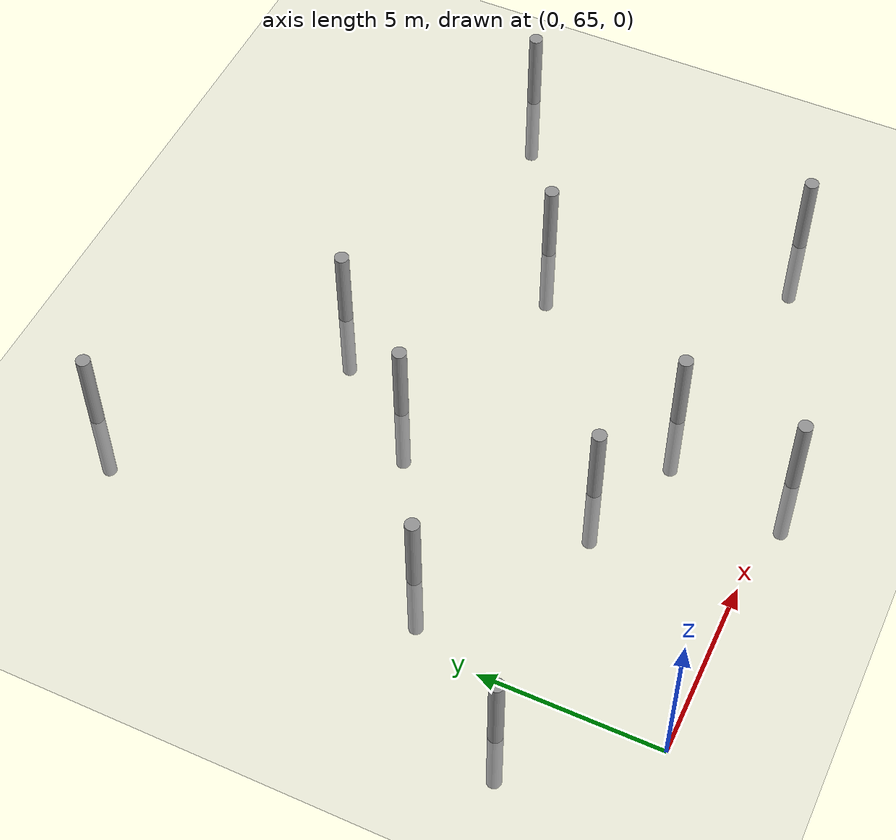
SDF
<sdf version="1.6">
 <world name="default">
  <model name="ground_plane">
   <static>1</static>
   <link name="link">
    <collision name="collision">
     <geometry><plane><normal>0 0 1</normal><size>100 100</size></plane></geometry>
     <surface><friction><ode><mu>100</mu><mu2>50</mu2></ode></friction></surface>
    </collision>
    <visual name="visual">
     <cast_shadows>0</cast_shadows>
     <geometry><plane><normal>0 0 1</normal><size>100 100</size></plane></geometry>
     <material>
      <script><uri>file://media/materials/scripts/gazebo.material</uri><name>Gazebo/Grey</name></script>
     </material>
    </visual>
   </link>
  </model>
  <model name="empty_pillars_0">
   <model name="empty_pillar_clone_6">
    <link name="link">
     <inertial>
      <mass>1</mass>
      <inertia><ixx>0.145833</ixx><ixy>0</ixy><ixz>0</ixz><iyy>0.145833</iyy><iyz>0</iyz><izz>0.125</izz></inertia>
     </inertial>
     <visual name="visual">
      <geometry><cylinder><radius>0.2</radius><length>5</length></cylinder></geometry>
      <material>
       <script><name>Gazebo/Grey</name><uri>file://media/materials/scripts/gazebo.material</uri></script>
       <shader type="vertex"><normal_map>__default__</normal_map></shader>
       <ambient>0.3 0.3 0.3 1</ambient>
       <diffuse>0.7 0.7 0.7 1</diffuse>
       <specular>0.01 0.01 0.01 1</specular>
       <emissive>0 0 0 1</emissive>
      </material>
     </visual>
     <collision name="collision">
      <geometry><cylinder><radius>0.05</radius><length>5</length></cylinder></geometry>
      <surface>
       <friction>
        <ode><mu>1</mu><mu2>1</mu2><fdir1>0 0 0</fdir1><slip1>0</slip1><slip2>0</slip2></ode>
        <torsional>
         <coefficient>1</coefficient>
         <patch_radius>0</patch_radius>
         <surface_radius>0</surface_radius>
         <use_patch_radius>1</use_patch_radius>
         <ode><slip>0</slip></ode>
        </torsional>
       </friction>
       <bounce><restitution_coefficient>0</restitution_coefficient><threshold>1e+06</threshold></bounce>
       <contact>
        <collide_without_contact>0</collide_without_contact>
        <collide_without_contact_bitmask>1</collide_without_contact_bitmask>
        <collide_bitmask>1</collide_bitmask>
        <ode>
         <soft_cfm>0</soft_cfm>
         <soft_erp>0.2</soft_erp>
         <kp>1e+13</kp>
         <kd>1</kd>
         <max_vel>0.01</max_vel>
         <min_depth>0</min_depth>
        </ode>
        <bullet>
         <split_impulse>1</split_impulse>
         <split_impulse_penetration_threshold>-0.01</split_impulse_penetration_threshold>
         <soft_cfm>0</soft_cfm>
         <soft_erp>0.2</soft_erp>
         <kp>1e+13</kp>
         <kd>1</kd>
        </bullet>
       </contact>
      </surface>
     </collision>
    </link>
    <static>0</static>
    <pose>24.9156 -9.11394 0 0 -0 0</pose>
   </model>
   <static>0</static>
   <pose>-26.2243 78.0173 0 0 -0 0</pose>
  </model>
  <model name="empty_pillars_1">
   <model name="empty_pillar">
    <link name="link">
     <inertial>
      <mass>1</mass>
      <inertia><ixx>0.145833</ixx><ixy>0</ixy><ixz>0</ixz><iyy>0.145833</iyy><iyz>0</iyz><izz>0.125</izz></inertia>
     </inertial>
     <visual name="visual">
      <geometry><cylinder><radius>0.2</radius><length>5</length></cylinder></geometry>
      <material>
       <script><name>Gazebo/Grey</name><uri>file://media/materials/scripts/gazebo.material</uri></script>
       <shader type="vertex"><normal_map>__default__</normal_map></shader>
       <ambient>0.3 0.3 0.3 1</ambient>
       <diffuse>0.7 0.7 0.7 1</diffuse>
       <specular>0.01 0.01 0.01 1</specular>
       <emissive>0 0 0 1</emissive>
      </material>
     </visual>
     <collision name="collision">
      <geometry><cylinder><radius>0.05</radius><length>5</length></cylinder></geometry>
      <surface>
       <friction>
        <ode><mu>1</mu><mu2>1</mu2><fdir1>0 0 0</fdir1><slip1>0</slip1><slip2>0</slip2></ode>
        <torsional>
         <coefficient>1</coefficient>
         <patch_radius>0</patch_radius>
         <surface_radius>0</surface_radius>
         <use_patch_radius>1</use_patch_radius>
         <ode><slip>0</slip></ode>
        </torsional>
       </friction>
       <bounce><restitution_coefficient>0</restitution_coefficient><threshold>1e+06</threshold></bounce>
       <contact>
        <collide_without_contact>0</collide_without_contact>
        <collide_without_contact_bitmask>1</collide_without_contact_bitmask>
        <collide_bitmask>1</collide_bitmask>
        <ode>
         <soft_cfm>0</soft_cfm>
         <soft_erp>0.2</soft_erp>
         <kp>1e+13</kp>
         <kd>1</kd>
         <max_vel>0.01</max_vel>
         <min_depth>0</min_depth>
        </ode>
        <bullet>
         <split_impulse>1</split_impulse>
         <split_impulse_penetration_threshold>-0.01</split_impulse_penetration_threshold>
         <soft_cfm>0</soft_cfm>
         <soft_erp>0.2</soft_erp>
         <kp>1e+13</kp>
         <kd>1</kd>
        </bullet>
       </contact>
      </surface>
     </collision>
    </link>
    <static>0</static>
    <pose>-3.84527 -0.717439 0 0 -0 0</pose>
   </model>
   <model name="empty_pillar_clone_14">
    <link name="link">
     <inertial>
      <mass>1</mass>
      <inertia><ixx>0.145833</ixx><ixy>0</ixy><ixz>0</ixz><iyy>0.145833</iyy><iyz>0</iyz><izz>0.125</izz></inertia>
     </inertial>
     <visual name="visual">
      <geometry><cylinder><radius>0.2</radius><length>5</length></cylinder></geometry>
      <material>
       <script><name>Gazebo/Grey</name><uri>file://media/materials/scripts/gazebo.material</uri></script>
       <shader type="vertex"><normal_map>__default__</normal_map></shader>
       <ambient>0.3 0.3 0.3 1</ambient>
       <diffuse>0.7 0.7 0.7 1</diffuse>
       <specular>0.01 0.01 0.01 1</specular>
       <emissive>0 0 0 1</emissive>
      </material>
     </visual>
     <collision name="collision">
      <geometry><cylinder><radius>0.05</radius><length>5</length></cylinder></geometry>
      <surface>
       <friction>
        <ode><mu>1</mu><mu2>1</mu2><fdir1>0 0 0</fdir1><slip1>0</slip1><slip2>0</slip2></ode>
        <torsional>
         <coefficient>1</coefficient>
         <patch_radius>0</patch_radius>
         <surface_radius>0</surface_radius>
         <use_patch_radius>1</use_patch_radius>
         <ode><slip>0</slip></ode>
        </torsional>
       </friction>
       <bounce><restitution_coefficient>0</restitution_coefficient><threshold>1e+06</threshold></bounce>
       <contact>
        <collide_without_contact>0</collide_without_contact>
        <collide_without_contact_bitmask>1</collide_without_contact_bitmask>
        <collide_bitmask>1</collide_bitmask>
        <ode>
         <soft_cfm>0</soft_cfm>
         <soft_erp>0.2</soft_erp>
         <kp>1e+13</kp>
         <kd>1</kd>
         <max_vel>0.01</max_vel>
         <min_depth>0</min_depth>
        </ode>
        <bullet>
         <split_impulse>1</split_impulse>
         <split_impulse_penetration_threshold>-0.01</split_impulse_penetration_threshold>
         <soft_cfm>0</soft_cfm>
         <soft_erp>0.2</soft_erp>
         <kp>1e+13</kp>
         <kd>1</kd>
        </bullet>
       </contact>
      </surface>
     </collision>
    </link>
    <static>0</static>
    <pose>-14.0146 0.646152 0 0 -0 0</pose>
   </model>
   <model name="empty_pillar_clone_15">
    <link name="link">
     <inertial>
      <mass>1</mass>
      <inertia><ixx>0.145833</ixx><ixy>0</ixy><ixz>0</ixz><iyy>0.145833</iyy><iyz>0</iyz><izz>0.125</izz></inertia>
     </inertial>
     <visual name="visual">
      <geometry><cylinder><radius>0.2</radius><length>5</length></cylinder></geometry>
      <material>
       <script><name>Gazebo/Grey</name><uri>file://media/materials/scripts/gazebo.material</uri></script>
       <shader type="vertex"><normal_map>__default__</normal_map></shader>
       <ambient>0.3 0.3 0.3 1</ambient>
       <diffuse>0.7 0.7 0.7 1</diffuse>
       <specular>0.01 0.01 0.01 1</specular>
       <emissive>0 0 0 1</emissive>
      </material>
     </visual>
     <collision name="collision">
      <geometry><cylinder><radius>0.05</radius><length>5</length></cylinder></geometry>
      <surface>
       <friction>
        <ode><mu>1</mu><mu2>1</mu2><fdir1>0 0 0</fdir1><slip1>0</slip1><slip2>0</slip2></ode>
        <torsional>
         <coefficient>1</coefficient>
         <patch_radius>0</patch_radius>
         <surface_radius>0</surface_radius>
         <use_patch_radius>1</use_patch_radius>
         <ode><slip>0</slip></ode>
        </torsional>
       </friction>
       <bounce><restitution_coefficient>0</restitution_coefficient><threshold>1e+06</threshold></bounce>
       <contact>
        <collide_without_contact>0</collide_without_contact>
        <collide_without_contact_bitmask>1</collide_without_contact_bitmask>
        <collide_bitmask>1</collide_bitmask>
        <ode>
         <soft_cfm>0</soft_cfm>
         <soft_erp>0.2</soft_erp>
         <kp>1e+13</kp>
         <kd>1</kd>
         <max_vel>0.01</max_vel>
         <min_depth>0</min_depth>
        </ode>
        <bullet>
         <split_impulse>1</split_impulse>
         <split_impulse_penetration_threshold>-0.01</split_impulse_penetration_threshold>
         <soft_cfm>0</soft_cfm>
         <soft_erp>0.2</soft_erp>
         <kp>1e+13</kp>
         <kd>1</kd>
        </bullet>
       </contact>
      </surface>
     </collision>
    </link>
    <static>0</static>
    <pose>-9.37193 -3.58732 0 0 -0 0</pose>
   </model>
   <model name="empty_pillar_clone_18">
    <link name="link">
     <inertial>
      <mass>1</mass>
      <inertia><ixx>0.145833</ixx><ixy>0</ixy><ixz>0</ixz><iyy>0.145833</iyy><iyz>0</iyz><izz>0.125</izz></inertia>
     </inertial>
     <visual name="visual">
      <geometry><cylinder><radius>0.2</radius><length>5</length></cylinder></geometry>
      <material>
       <script><name>Gazebo/Grey</name><uri>file://media/materials/scripts/gazebo.material</uri></script>
       <shader type="vertex"><normal_map>__default__</normal_map></shader>
       <ambient>0.3 0.3 0.3 1</ambient>
       <diffuse>0.7 0.7 0.7 1</diffuse>
       <specular>0.01 0.01 0.01 1</specular>
       <emissive>0 0 0 1</emissive>
      </material>
     </visual>
     <collision name="collision">
      <geometry><cylinder><radius>0.05</radius><length>5</length></cylinder></geometry>
      <surface>
       <friction>
        <ode><mu>1</mu><mu2>1</mu2><fdir1>0 0 0</fdir1><slip1>0</slip1><slip2>0</slip2></ode>
        <torsional>
         <coefficient>1</coefficient>
         <patch_radius>0</patch_radius>
         <surface_radius>0</surface_radius>
         <use_patch_radius>1</use_patch_radius>
         <ode><slip>0</slip></ode>
        </torsional>
       </friction>
       <bounce><restitution_coefficient>0</restitution_coefficient><threshold>1e+06</threshold></bounce>
       <contact>
        <collide_without_contact>0</collide_without_contact>
        <collide_without_contact_bitmask>1</collide_without_contact_bitmask>
        <collide_bitmask>1</collide_bitmask>
        <ode>
         <soft_cfm>0</soft_cfm>
         <soft_erp>0.2</soft_erp>
         <kp>1e+13</kp>
         <kd>1</kd>
         <max_vel>0.01</max_vel>
         <min_depth>0</min_depth>
        </ode>
        <bullet>
         <split_impulse>1</split_impulse>
         <split_impulse_penetration_threshold>-0.01</split_impulse_penetration_threshold>
         <soft_cfm>0</soft_cfm>
         <soft_erp>0.2</soft_erp>
         <kp>1e+13</kp>
         <kd>1</kd>
        </bullet>
       </contact>
      </surface>
     </collision>
    </link>
    <static>0</static>
    <pose>-20.0146 5.15966 0 0 -0 0</pose>
   </model>
   <model name="empty_pillar_clone_36">
    <link name="link">
     <inertial>
      <mass>1</mass>
      <inertia><ixx>0.145833</ixx><ixy>0</ixy><ixz>0</ixz><iyy>0.145833</iyy><iyz>0</iyz><izz>0.125</izz></inertia>
     </inertial>
     <visual name="visual">
      <geometry><cylinder><radius>0.2</radius><length>5</length></cylinder></geometry>
      <material>
       <script><name>Gazebo/Grey</name><uri>file://media/materials/scripts/gazebo.material</uri></script>
       <shader type="vertex"><normal_map>__default__</normal_map></shader>
       <ambient>0.3 0.3 0.3 1</ambient>
       <diffuse>0.7 0.7 0.7 1</diffuse>
       <specular>0.01 0.01 0.01 1</specular>
       <emissive>0 0 0 1</emissive>
      </material>
     </visual>
     <collision name="collision">
      <geometry><cylinder><radius>0.05</radius><length>5</length></cylinder></geometry>
      <surface>
       <friction>
        <ode><mu>1</mu><mu2>1</mu2><fdir1>0 0 0</fdir1><slip1>0</slip1><slip2>0</slip2></ode>
        <torsional>
         <coefficient>1</coefficient>
         <patch_radius>0</patch_radius>
         <surface_radius>0</surface_radius>
         <use_patch_radius>1</use_patch_radius>
         <ode><slip>0</slip></ode>
        </torsional>
       </friction>
       <bounce><restitution_coefficient>0</restitution_coefficient><threshold>1e+06</threshold></bounce>
       <contact>
        <collide_without_contact>0</collide_without_contact>
        <collide_without_contact_bitmask>1</collide_without_contact_bitmask>
        <collide_bitmask>1</collide_bitmask>
        <ode>
         <soft_cfm>0</soft_cfm>
         <soft_erp>0.2</soft_erp>
         <kp>1e+13</kp>
         <kd>1</kd>
         <max_vel>0.01</max_vel>
         <min_depth>0</min_depth>
        </ode>
        <bullet>
         <split_impulse>1</split_impulse>
         <split_impulse_penetration_threshold>-0.01</split_impulse_penetration_threshold>
         <soft_cfm>0</soft_cfm>
         <soft_erp>0.2</soft_erp>
         <kp>1e+13</kp>
         <kd>1</kd>
        </bullet>
       </contact>
      </surface>
     </collision>
    </link>
    <static>0</static>
    <pose>-21.0146 -4.84034 0 0 -0 0</pose>
   </model>
   <model name="empty_pillar_clone_37">
    <link name="link">
     <inertial>
      <mass>1</mass>
      <inertia><ixx>0.145833</ixx><ixy>0</ixy><ixz>0</ixz><iyy>0.145833</iyy><iyz>0</iyz><izz>0.125</izz></inertia>
     </inertial>
     <visual name="visual">
      <geometry><cylinder><radius>0.2</radius><length>5</length></cylinder></geometry>
      <material>
       <script><name>Gazebo/Grey</name><uri>file://media/materials/scripts/gazebo.material</uri></script>
       <shader type="vertex"><normal_map>__default__</normal_map></shader>
       <ambient>0.3 0.3 0.3 1</ambient>
       <diffuse>0.7 0.7 0.7 1</diffuse>
       <specular>0.01 0.01 0.01 1</specular>
       <emissive>0 0 0 1</emissive>
      </material>
     </visual>
     <collision name="collision">
      <geometry><cylinder><radius>0.05</radius><length>5</length></cylinder></geometry>
      <surface>
       <friction>
        <ode><mu>1</mu><mu2>1</mu2><fdir1>0 0 0</fdir1><slip1>0</slip1><slip2>0</slip2></ode>
        <torsional>
         <coefficient>1</coefficient>
         <patch_radius>0</patch_radius>
         <surface_radius>0</surface_radius>
         <use_patch_radius>1</use_patch_radius>
         <ode><slip>0</slip></ode>
        </torsional>
       </friction>
       <bounce><restitution_coefficient>0</restitution_coefficient><threshold>1e+06</threshold></bounce>
       <contact>
        <collide_without_contact>0</collide_without_contact>
        <collide_without_contact_bitmask>1</collide_without_contact_bitmask>
        <collide_bitmask>1</collide_bitmask>
        <ode>
         <soft_cfm>0</soft_cfm>
         <soft_erp>0.2</soft_erp>
         <kp>1e+13</kp>
         <kd>1</kd>
         <max_vel>0.01</max_vel>
         <min_depth>0</min_depth>
        </ode>
        <bullet>
         <split_impulse>1</split_impulse>
         <split_impulse_penetration_threshold>-0.01</split_impulse_penetration_threshold>
         <soft_cfm>0</soft_cfm>
         <soft_erp>0.2</soft_erp>
         <kp>1e+13</kp>
         <kd>1</kd>
        </bullet>
       </contact>
      </surface>
     </collision>
    </link>
    <static>0</static>
    <pose>-16.6035 -7.98282 0 0 -0 0</pose>
   </model>
   <model name="empty_pillar_clone_38">
    <link name="link">
     <inertial>
      <mass>1</mass>
      <inertia><ixx>0.145833</ixx><ixy>0</ixy><ixz>0</ixz><iyy>0.145833</iyy><iyz>0</iyz><izz>0.125</izz></inertia>
     </inertial>
     <visual name="visual">
      <geometry><cylinder><radius>0.2</radius><length>5</length></cylinder></geometry>
      <material>
       <script><name>Gazebo/Grey</name><uri>file://media/materials/scripts/gazebo.material</uri></script>
       <shader type="vertex"><normal_map>__default__</normal_map></shader>
       <ambient>0.3 0.3 0.3 1</ambient>
       <diffuse>0.7 0.7 0.7 1</diffuse>
       <specular>0.01 0.01 0.01 1</specular>
       <emissive>0 0 0 1</emissive>
      </material>
     </visual>
     <collision name="collision">
      <geometry><cylinder><radius>0.05</radius><length>5</length></cylinder></geometry>
      <surface>
       <friction>
        <ode><mu>1</mu><mu2>1</mu2><fdir1>0 0 0</fdir1><slip1>0</slip1><slip2>0</slip2></ode>
        <torsional>
         <coefficient>1</coefficient>
         <patch_radius>0</patch_radius>
         <surface_radius>0</surface_radius>
         <use_patch_radius>1</use_patch_radius>
         <ode><slip>0</slip></ode>
        </torsional>
       </friction>
       <bounce><restitution_coefficient>0</restitution_coefficient><threshold>1e+06</threshold></bounce>
       <contact>
        <collide_without_contact>0</collide_without_contact>
        <collide_without_contact_bitmask>1</collide_without_contact_bitmask>
        <collide_bitmask>1</collide_bitmask>
        <ode>
         <soft_cfm>0</soft_cfm>
         <soft_erp>0.2</soft_erp>
         <kp>1e+13</kp>
         <kd>1</kd>
         <max_vel>0.01</max_vel>
         <min_depth>0</min_depth>
        </ode>
        <bullet>
         <split_impulse>1</split_impulse>
         <split_impulse_penetration_threshold>-0.01</split_impulse_penetration_threshold>
         <soft_cfm>0</soft_cfm>
         <soft_erp>0.2</soft_erp>
         <kp>1e+13</kp>
         <kd>1</kd>
        </bullet>
       </contact>
      </surface>
     </collision>
    </link>
    <static>0</static>
    <pose>-16.33 -2.21607 0 0 -0 0</pose>
   </model>
   <model name="empty_pillar_clone_39">
    <link name="link">
     <inertial>
      <mass>1</mass>
      <inertia><ixx>0.145833</ixx><ixy>0</ixy><ixz>0</ixz><iyy>0.145833</iyy><iyz>0</iyz><izz>0.125</izz></inertia>
     </inertial>
     <visual name="visual">
      <geometry><cylinder><radius>0.2</radius><length>5</length></cylinder></geometry>
      <material>
       <script><name>Gazebo/Grey</name><uri>file://media/materials/scripts/gazebo.material</uri></script>
       <shader type="vertex"><normal_map>__default__</normal_map></shader>
       <ambient>0.3 0.3 0.3 1</ambient>
       <diffuse>0.7 0.7 0.7 1</diffuse>
       <specular>0.01 0.01 0.01 1</specular>
       <emissive>0 0 0 1</emissive>
      </material>
     </visual>
     <collision name="collision">
      <geometry><cylinder><radius>0.05</radius><length>5</length></cylinder></geometry>
      <surface>
       <friction>
        <ode><mu>1</mu><mu2>1</mu2><fdir1>0 0 0</fdir1><slip1>0</slip1><slip2>0</slip2></ode>
        <torsional>
         <coefficient>1</coefficient>
         <patch_radius>0</patch_radius>
         <surface_radius>0</surface_radius>
         <use_patch_radius>1</use_patch_radius>
         <ode><slip>0</slip></ode>
        </torsional>
       </friction>
       <bounce><restitution_coefficient>0</restitution_coefficient><threshold>1e+06</threshold></bounce>
       <contact>
        <collide_without_contact>0</collide_without_contact>
        <collide_without_contact_bitmask>1</collide_without_contact_bitmask>
        <collide_bitmask>1</collide_bitmask>
        <ode>
         <soft_cfm>0</soft_cfm>
         <soft_erp>0.2</soft_erp>
         <kp>1e+13</kp>
         <kd>1</kd>
         <max_vel>0.01</max_vel>
         <min_depth>0</min_depth>
        </ode>
        <bullet>
         <split_impulse>1</split_impulse>
         <split_impulse_penetration_threshold>-0.01</split_impulse_penetration_threshold>
         <soft_cfm>0</soft_cfm>
         <soft_erp>0.2</soft_erp>
         <kp>1e+13</kp>
         <kd>1</kd>
        </bullet>
       </contact>
      </surface>
     </collision>
    </link>
    <static>0</static>
    <pose>-13.4361 -9.12638 0 0 -0 0</pose>
   </model>
   <model name="empty_pillar_clone_41">
    <link name="link">
     <inertial>
      <mass>1</mass>
      <inertia><ixx>0.145833</ixx><ixy>0</ixy><ixz>0</ixz><iyy>0.145833</iyy><iyz>0</iyz><izz>0.125</izz></inertia>
     </inertial>
     <visual name="visual">
      <geometry><cylinder><radius>0.2</radius><length>5</length></cylinder></geometry>
      <material>
       <script><name>Gazebo/Grey</name><uri>file://media/materials/scripts/gazebo.material</uri></script>
       <shader type="vertex"><normal_map>__default__</normal_map></shader>
       <ambient>0.3 0.3 0.3 1</ambient>
       <diffuse>0.7 0.7 0.7 1</diffuse>
       <specular>0.01 0.01 0.01 1</specular>
       <emissive>0 0 0 1</emissive>
      </material>
     </visual>
     <collision name="collision">
      <geometry><cylinder><radius>0.05</radius><length>5</length></cylinder></geometry>
      <surface>
       <friction>
        <ode><mu>1</mu><mu2>1</mu2><fdir1>0 0 0</fdir1><slip1>0</slip1><slip2>0</slip2></ode>
        <torsional>
         <coefficient>1</coefficient>
         <patch_radius>0</patch_radius>
         <surface_radius>0</surface_radius>
         <use_patch_radius>1</use_patch_radius>
         <ode><slip>0</slip></ode>
        </torsional>
       </friction>
       <bounce><restitution_coefficient>0</restitution_coefficient><threshold>1e+06</threshold></bounce>
       <contact>
        <collide_without_contact>0</collide_without_contact>
        <collide_without_contact_bitmask>1</collide_without_contact_bitmask>
        <collide_bitmask>1</collide_bitmask>
        <ode>
         <soft_cfm>0</soft_cfm>
         <soft_erp>0.2</soft_erp>
         <kp>1e+13</kp>
         <kd>1</kd>
         <max_vel>0.01</max_vel>
         <min_depth>0</min_depth>
        </ode>
        <bullet>
         <split_impulse>1</split_impulse>
         <split_impulse_penetration_threshold>-0.01</split_impulse_penetration_threshold>
         <soft_cfm>0</soft_cfm>
         <soft_erp>0.2</soft_erp>
         <kp>1e+13</kp>
         <kd>1</kd>
        </bullet>
       </contact>
      </surface>
     </collision>
    </link>
    <static>0</static>
    <pose>-14.1448 -12.6326 0 0 -0 0</pose>
   </model>
   <model name="empty_pillar_clone_5">
    <link name="link">
     <inertial>
      <mass>1</mass>
      <inertia><ixx>0.145833</ixx><ixy>0</ixy><ixz>0</ixz><iyy>0.145833</iyy><iyz>0</iyz><izz>0.125</izz></inertia>
     </inertial>
     <visual name="visual">
      <geometry><cylinder><radius>0.2</radius><length>5</length></cylinder></geometry>
      <material>
       <script><name>Gazebo/Grey</name><uri>file://media/materials/scripts/gazebo.material</uri></script>
       <shader type="vertex"><normal_map>__default__</normal_map></shader>
       <ambient>0.3 0.3 0.3 1</ambient>
       <diffuse>0.7 0.7 0.7 1</diffuse>
       <specular>0.01 0.01 0.01 1</specular>
       <emissive>0 0 0 1</emissive>
      </material>
     </visual>
     <collision name="collision">
      <geometry><cylinder><radius>0.05</radius><length>5</length></cylinder></geometry>
      <surface>
       <friction>
        <ode><mu>1</mu><mu2>1</mu2><fdir1>0 0 0</fdir1><slip1>0</slip1><slip2>0</slip2></ode>
        <torsional>
         <coefficient>1</coefficient>
         <patch_radius>0</patch_radius>
         <surface_radius>0</surface_radius>
         <use_patch_radius>1</use_patch_radius>
         <ode><slip>0</slip></ode>
        </torsional>
       </friction>
       <bounce><restitution_coefficient>0</restitution_coefficient><threshold>1e+06</threshold></bounce>
       <contact>
        <collide_without_contact>0</collide_without_contact>
        <collide_without_contact_bitmask>1</collide_without_contact_bitmask>
        <collide_bitmask>1</collide_bitmask>
        <ode>
         <soft_cfm>0</soft_cfm>
         <soft_erp>0.2</soft_erp>
         <kp>1e+13</kp>
         <kd>1</kd>
         <max_vel>0.01</max_vel>
         <min_depth>0</min_depth>
        </ode>
        <bullet>
         <split_impulse>1</split_impulse>
         <split_impulse_penetration_threshold>-0.01</split_impulse_penetration_threshold>
         <soft_cfm>0</soft_cfm>
         <soft_erp>0.2</soft_erp>
         <kp>1e+13</kp>
         <kd>1</kd>
        </bullet>
       </contact>
      </surface>
     </collision>
    </link>
    <static>0</static>
    <pose>-6.03595 -10.0932 0 0 -0 0</pose>
   </model>
   <static>0</static>
   <pose>22.8728 77.4317 0 0 -0 0</pose>
  </model>
 </world>
</sdf>
